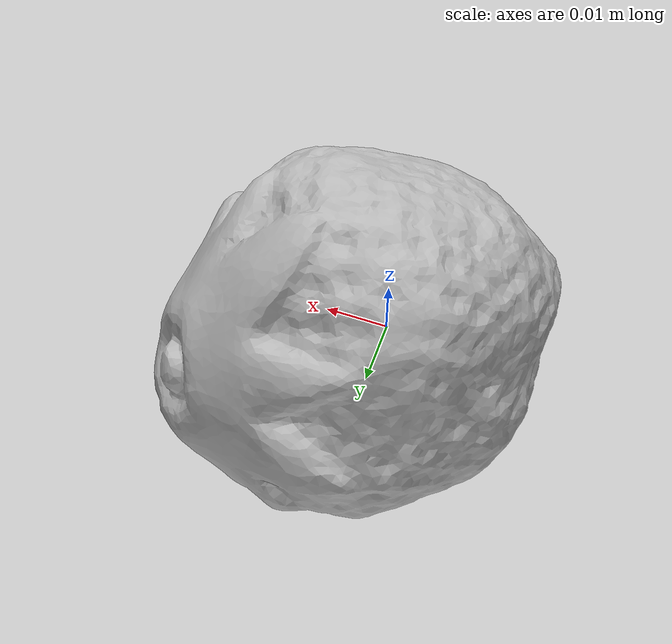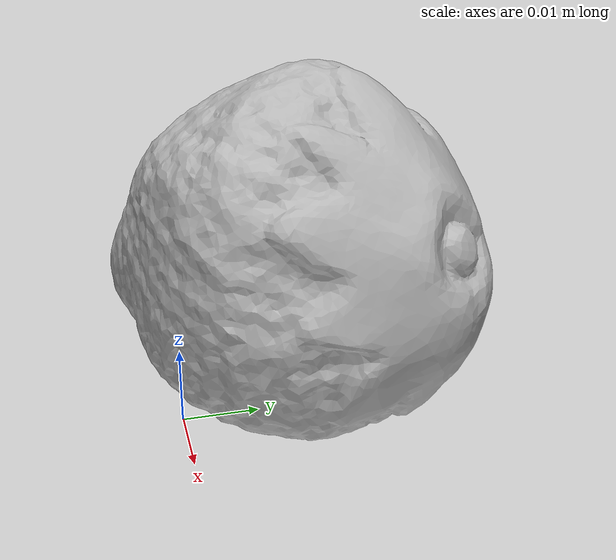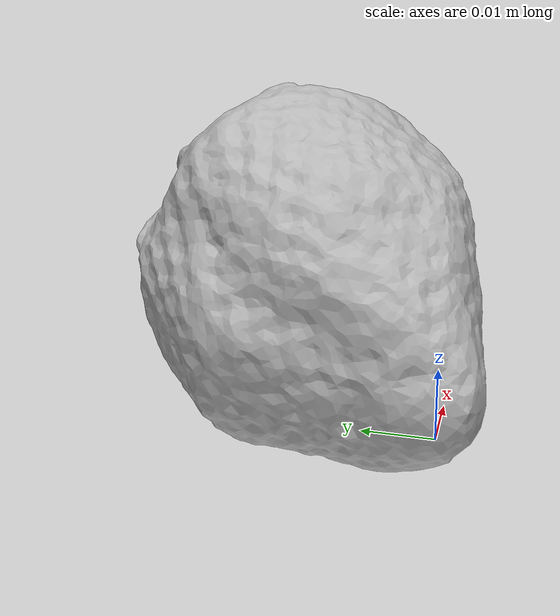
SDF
<?xml version='1.0'?>
<sdf version="1.4">
  <model name="strawberry">
    <static>false</static>
    <link name="link">
      <inertial>
        <pose>-0.0014938727773305587 0.01543267993372879 0.02111450326881559 1.793144175492741 -0.19802739365303026 -0.8594619155466203</pose>
        <mass>4.832344833863233e-05</mass>
        <inertia>
          <ixx>1.114288736425179e-08</ixx>
          <ixy>-1.5556801847878075e-24</ixy>
          <ixz>1.693068339118519e-24</ixz>
          <iyy>1.0106109240846605e-08</iyy>
          <iyz>2.941757673188337e-25</iyz>
          <izz>9.086808374326574e-09</izz>
        </inertia>
      </inertial>
      <collision name="collision">
        <geometry>
          <mesh>
            <!-- Use a downsampled mesh for collisions -->
            <uri>model://012_strawberry/google_16k/012_strawberry.obj</uri>
            </mesh>
        </geometry>
        <surface>
          <friction>
            <ode>
              <mu>0.9</mu>
              <mu2>0.9</mu2>
            </ode>
          </friction>
          <contact>
            <ode>
              <kp>1000000000000.0</kp>
              <kd>1</kd>
              <min_depth>0.0001</min_depth>
              <max_vel>0.01</max_vel>
            </ode>
          </contact>
          <bounce>
            <restitution_coefficient>0.1</restitution_coefficient>
            <threshold>1000.0</threshold>
          </bounce>
        </surface>
      </collision>
      <visual name="visual">
        <geometry>
          <mesh>
            <uri>model://012_strawberry/google_16k/012_strawberry.dae</uri>
            </mesh>
        </geometry>
      </visual>
    </link>
  </model>
</sdf>
